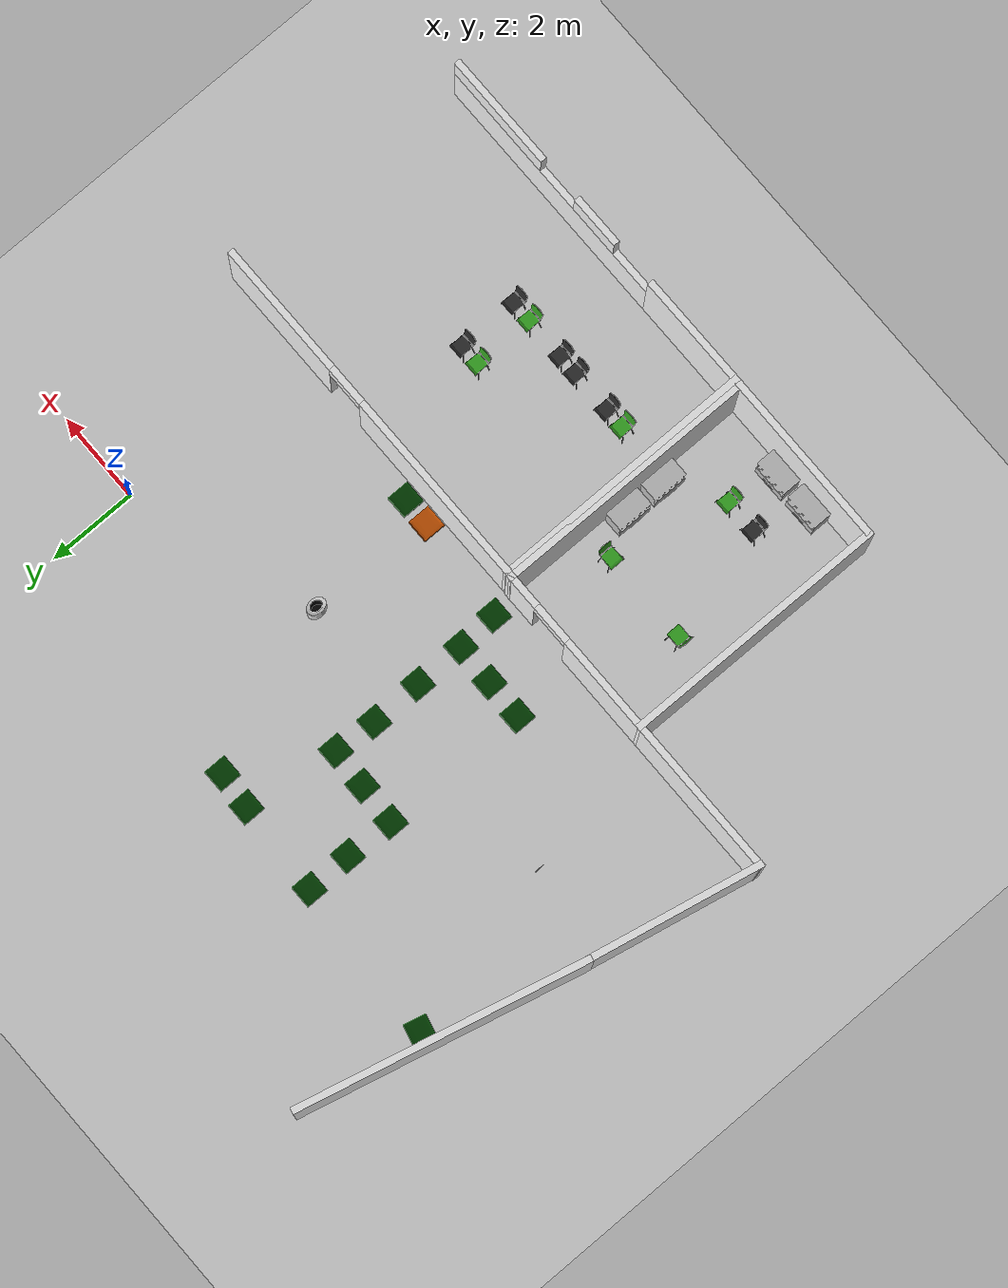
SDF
<sdf version="1.6">
 <world name="default">
  <model name="ground_plane">
   <static>1</static>
   <link name="link">
    <collision name="collision">
     <geometry><plane><normal>0 0 1</normal><size>100 100</size></plane></geometry>
     <surface><friction><ode><mu>100</mu><mu2>50</mu2></ode></friction></surface>
    </collision>
    <visual name="visual">
     <cast_shadows>0</cast_shadows>
     <geometry><plane><normal>0 0 1</normal><size>100 100</size></plane></geometry>
     <material>
      <script><uri>file://media/materials/scripts/gazebo.material</uri><name>Gazebo/Grey</name></script>
     </material>
    </visual>
   </link>
  </model>
  <model name="ucu_basic_frame.world">
   <link name="Wall_187">
    <pose>-2.91004 -8.08571 0 0 0 -3.14</pose>
    <visual name="Wall_187_Visual_0">
     <pose>-2.67697 0 1.25 0 -0 0</pose>
     <geometry><box><size>3.06354 0.15 2.5</size></box></geometry>
     <material>
      <script><uri>file://media/materials/scripts/gazebo.material</uri><name>Gazebo/White</name></script>
      <ambient>1 1 1 1</ambient>
      <diffuse>1 1 1 1</diffuse>
      <specular>0 0 0 1</specular>
      <emissive>0 0 0 1</emissive>
     </material>
     <meta><layer>0</layer></meta>
    </visual>
    <visual name="Wall_187_Visual_2">
     <pose>-0.695201 0 2.25 0 -0 0</pose>
     <geometry><box><size>0.9 0.15 0.5</size></box></geometry>
     <material>
      <script><uri>file://media/materials/scripts/gazebo.material</uri><name>Gazebo/White</name></script>
      <ambient>1 1 1 1</ambient>
      <diffuse>1 1 1 1</diffuse>
      <specular>0 0 0 1</specular>
      <emissive>0 0 0 1</emissive>
     </material>
     <meta><layer>0</layer></meta>
    </visual>
    <visual name="Wall_187_Visual_1">
     <pose>1.98177 0 1.25 0 -0 0</pose>
     <geometry><box><size>4.45394 0.15 2.5</size></box></geometry>
     <material>
      <script><uri>file://media/materials/scripts/gazebo.material</uri><name>Gazebo/White</name></script>
      <ambient>1 1 1 1</ambient>
      <diffuse>1 1 1 1</diffuse>
      <specular>0 0 0 1</specular>
      <emissive>0 0 0 1</emissive>
     </material>
     <meta><layer>0</layer></meta>
    </visual>
    <collision name="Wall_187_Collision_0">
     <pose>-2.67697 0 1.25 0 -0 0</pose>
     <geometry><box><size>3.06354 0.15 2.5</size></box></geometry>
     <surface>
      <friction>
       <ode><mu>1</mu><mu2>1</mu2><fdir1>0 0 0</fdir1><slip1>0</slip1><slip2>0</slip2></ode>
       <torsional>
        <coefficient>1</coefficient>
        <patch_radius>0</patch_radius>
        <surface_radius>0</surface_radius>
        <use_patch_radius>1</use_patch_radius>
        <ode><slip>0</slip></ode>
       </torsional>
      </friction>
      <bounce><restitution_coefficient>0</restitution_coefficient><threshold>1e+06</threshold></bounce>
      <contact>
       <collide_without_contact>0</collide_without_contact>
       <collide_without_contact_bitmask>1</collide_without_contact_bitmask>
       <collide_bitmask>1</collide_bitmask>
       <ode>
        <soft_cfm>0</soft_cfm>
        <soft_erp>0.2</soft_erp>
        <kp>1e+13</kp>
        <kd>1</kd>
        <max_vel>0.01</max_vel>
        <min_depth>0</min_depth>
       </ode>
       <bullet>
        <split_impulse>1</split_impulse>
        <split_impulse_penetration_threshold>-0.01</split_impulse_penetration_threshold>
        <soft_cfm>0</soft_cfm>
        <soft_erp>0.2</soft_erp>
        <kp>1e+13</kp>
        <kd>1</kd>
       </bullet>
      </contact>
     </surface>
    </collision>
    <collision name="Wall_187_Collision_1">
     <pose>1.98177 0 1.25 0 -0 0</pose>
     <geometry><box><size>4.45394 0.15 2.5</size></box></geometry>
     <surface>
      <friction>
       <ode><mu>1</mu><mu2>1</mu2><fdir1>0 0 0</fdir1><slip1>0</slip1><slip2>0</slip2></ode>
       <torsional>
        <coefficient>1</coefficient>
        <patch_radius>0</patch_radius>
        <surface_radius>0</surface_radius>
        <use_patch_radius>1</use_patch_radius>
        <ode><slip>0</slip></ode>
       </torsional>
      </friction>
      <bounce><restitution_coefficient>0</restitution_coefficient><threshold>1e+06</threshold></bounce>
      <contact>
       <collide_without_contact>0</collide_without_contact>
       <collide_without_contact_bitmask>1</collide_without_contact_bitmask>
       <collide_bitmask>1</collide_bitmask>
       <ode>
        <soft_cfm>0</soft_cfm>
        <soft_erp>0.2</soft_erp>
        <kp>1e+13</kp>
        <kd>1</kd>
        <max_vel>0.01</max_vel>
        <min_depth>0</min_depth>
       </ode>
       <bullet>
        <split_impulse>1</split_impulse>
        <split_impulse_penetration_threshold>-0.01</split_impulse_penetration_threshold>
        <soft_cfm>0</soft_cfm>
        <soft_erp>0.2</soft_erp>
        <kp>1e+13</kp>
        <kd>1</kd>
       </bullet>
      </contact>
     </surface>
    </collision>
    <collision name="Wall_187_Collision_2">
     <pose>-0.695201 0 2.25 0 -0 0</pose>
     <geometry><box><size>0.9 0.15 0.5</size></box></geometry>
     <surface>
      <friction>
       <ode><mu>1</mu><mu2>1</mu2><fdir1>0 0 0</fdir1><slip1>0</slip1><slip2>0</slip2></ode>
       <torsional>
        <coefficient>1</coefficient>
        <patch_radius>0</patch_radius>
        <surface_radius>0</surface_radius>
        <use_patch_radius>1</use_patch_radius>
        <ode><slip>0</slip></ode>
       </torsional>
      </friction>
      <bounce><restitution_coefficient>0</restitution_coefficient><threshold>1e+06</threshold></bounce>
      <contact>
       <collide_without_contact>0</collide_without_contact>
       <collide_without_contact_bitmask>1</collide_without_contact_bitmask>
       <collide_bitmask>1</collide_bitmask>
       <ode>
        <soft_cfm>0</soft_cfm>
        <soft_erp>0.2</soft_erp>
        <kp>1e+13</kp>
        <kd>1</kd>
        <max_vel>0.01</max_vel>
        <min_depth>0</min_depth>
       </ode>
       <bullet>
        <split_impulse>1</split_impulse>
        <split_impulse_penetration_threshold>-0.01</split_impulse_penetration_threshold>
        <soft_cfm>0</soft_cfm>
        <soft_erp>0.2</soft_erp>
        <kp>1e+13</kp>
        <kd>1</kd>
       </bullet>
      </contact>
     </surface>
    </collision>
   </link>
   <link name="Wall_188">
    <pose>-7.05036 -11.0083 0 0 0 -1.56854</pose>
    <visual name="Wall_188_Visual">
     <pose>0 0 1.25 0 -0 0</pose>
     <geometry><box><size>5.98201 0.15 2.5</size></box></geometry>
     <material>
      <script><uri>file://media/materials/scripts/gazebo.material</uri><name>Gazebo/White</name></script>
      <ambient>0 1 0 1</ambient>
      <diffuse>1 1 1 1</diffuse>
      <specular>0 0 0 1</specular>
      <emissive>0 0 0 1</emissive>
     </material>
     <meta><layer>0</layer></meta>
    </visual>
    <collision name="Wall_188_Collision">
     <pose>0 0 1.25 0 -0 0</pose>
     <geometry><box><size>5.98201 0.15 2.5</size></box></geometry>
     <surface>
      <friction>
       <ode><mu>1</mu><mu2>1</mu2><fdir1>0 0 0</fdir1><slip1>0</slip1><slip2>0</slip2></ode>
       <torsional>
        <coefficient>1</coefficient>
        <patch_radius>0</patch_radius>
        <surface_radius>0</surface_radius>
        <use_patch_radius>1</use_patch_radius>
        <ode><slip>0</slip></ode>
       </torsional>
      </friction>
      <bounce><restitution_coefficient>0</restitution_coefficient><threshold>1e+06</threshold></bounce>
      <contact>
       <collide_without_contact>0</collide_without_contact>
       <collide_without_contact_bitmask>1</collide_without_contact_bitmask>
       <collide_bitmask>1</collide_bitmask>
       <ode>
        <soft_cfm>0</soft_cfm>
        <soft_erp>0.2</soft_erp>
        <kp>1e+13</kp>
        <kd>1</kd>
        <max_vel>0.01</max_vel>
        <min_depth>0</min_depth>
       </ode>
       <bullet>
        <split_impulse>1</split_impulse>
        <split_impulse_penetration_threshold>-0.01</split_impulse_penetration_threshold>
        <soft_cfm>0</soft_cfm>
        <soft_erp>0.2</soft_erp>
        <kp>1e+13</kp>
        <kd>1</kd>
       </bullet>
      </contact>
     </surface>
    </collision>
   </link>
   <link name="Wall_189">
    <pose>-2.90346 -13.9177 0 0 -0 0.00159</pose>
    <visual name="Wall_189_Visual_0">
     <pose>-2.9043 0 1.25 0 -0 0</pose>
     <geometry><box><size>2.62204 0.15 2.5</size></box></geometry>
     <material>
      <script><uri>file://media/materials/scripts/gazebo.material</uri><name>Gazebo/White</name></script>
      <ambient>1 1 1 1</ambient>
      <diffuse>1 1 1 1</diffuse>
      <specular>0 0 0 1</specular>
      <emissive>0 0 0 1</emissive>
     </material>
     <meta><layer>0</layer></meta>
    </visual>
    <visual name="Wall_189_Visual_1">
     <pose>1.31102 0 0.85 0 -0 0</pose>
     <geometry><box><size>5.8086 0.15 1.7</size></box></geometry>
     <material>
      <script><uri>file://media/materials/scripts/gazebo.material</uri><name>Gazebo/White</name></script>
      <ambient>1 1 1 1</ambient>
      <diffuse>1 1 1 1</diffuse>
      <specular>0 0 0 1</specular>
      <emissive>0 0 0 1</emissive>
     </material>
     <meta><layer>0</layer></meta>
    </visual>
    <visual name="Wall_189_Visual_2">
     <pose>0.003473 0 2.1 0 -0 0</pose>
     <geometry><box><size>1.19351 0.15 0.8</size></box></geometry>
     <material>
      <script><uri>file://media/materials/scripts/gazebo.material</uri><name>Gazebo/White</name></script>
      <ambient>1 1 1 1</ambient>
      <diffuse>1 1 1 1</diffuse>
      <specular>0 0 0 1</specular>
      <emissive>0 0 0 1</emissive>
     </material>
     <meta><layer>0</layer></meta>
    </visual>
    <visual name="Wall_189_Visual_3">
     <pose>2.90777 0 2.1 0 -0 0</pose>
     <geometry><box><size>2.6151 0.15 0.8</size></box></geometry>
     <material>
      <script><uri>file://media/materials/scripts/gazebo.material</uri><name>Gazebo/White</name></script>
      <ambient>1 1 1 1</ambient>
      <diffuse>1 1 1 1</diffuse>
      <specular>0 0 0 1</specular>
      <emissive>0 0 0 1</emissive>
     </material>
     <meta><layer>0</layer></meta>
    </visual>
    <collision name="Wall_189_Collision_0">
     <pose>-2.9043 0 1.25 0 -0 0</pose>
     <geometry><box><size>2.62204 0.15 2.5</size></box></geometry>
     <surface>
      <friction>
       <ode><mu>1</mu><mu2>1</mu2><fdir1>0 0 0</fdir1><slip1>0</slip1><slip2>0</slip2></ode>
       <torsional>
        <coefficient>1</coefficient>
        <patch_radius>0</patch_radius>
        <surface_radius>0</surface_radius>
        <use_patch_radius>1</use_patch_radius>
        <ode><slip>0</slip></ode>
       </torsional>
      </friction>
      <bounce><restitution_coefficient>0</restitution_coefficient><threshold>1e+06</threshold></bounce>
      <contact>
       <collide_without_contact>0</collide_without_contact>
       <collide_without_contact_bitmask>1</collide_without_contact_bitmask>
       <collide_bitmask>1</collide_bitmask>
       <ode>
        <soft_cfm>0</soft_cfm>
        <soft_erp>0.2</soft_erp>
        <kp>1e+13</kp>
        <kd>1</kd>
        <max_vel>0.01</max_vel>
        <min_depth>0</min_depth>
       </ode>
       <bullet>
        <split_impulse>1</split_impulse>
        <split_impulse_penetration_threshold>-0.01</split_impulse_penetration_threshold>
        <soft_cfm>0</soft_cfm>
        <soft_erp>0.2</soft_erp>
        <kp>1e+13</kp>
        <kd>1</kd>
       </bullet>
      </contact>
     </surface>
    </collision>
    <collision name="Wall_189_Collision_1">
     <pose>1.31102 0 0.85 0 -0 0</pose>
     <geometry><box><size>5.8086 0.15 1.7</size></box></geometry>
     <surface>
      <friction>
       <ode><mu>1</mu><mu2>1</mu2><fdir1>0 0 0</fdir1><slip1>0</slip1><slip2>0</slip2></ode>
       <torsional>
        <coefficient>1</coefficient>
        <patch_radius>0</patch_radius>
        <surface_radius>0</surface_radius>
        <use_patch_radius>1</use_patch_radius>
        <ode><slip>0</slip></ode>
       </torsional>
      </friction>
      <bounce><restitution_coefficient>0</restitution_coefficient><threshold>1e+06</threshold></bounce>
      <contact>
       <collide_without_contact>0</collide_without_contact>
       <collide_without_contact_bitmask>1</collide_without_contact_bitmask>
       <collide_bitmask>1</collide_bitmask>
       <ode>
        <soft_cfm>0</soft_cfm>
        <soft_erp>0.2</soft_erp>
        <kp>1e+13</kp>
        <kd>1</kd>
        <max_vel>0.01</max_vel>
        <min_depth>0</min_depth>
       </ode>
       <bullet>
        <split_impulse>1</split_impulse>
        <split_impulse_penetration_threshold>-0.01</split_impulse_penetration_threshold>
        <soft_cfm>0</soft_cfm>
        <soft_erp>0.2</soft_erp>
        <kp>1e+13</kp>
        <kd>1</kd>
       </bullet>
      </contact>
     </surface>
    </collision>
    <collision name="Wall_189_Collision_3">
     <pose>2.90777 0 2.1 0 -0 0</pose>
     <geometry><box><size>2.6151 0.15 0.8</size></box></geometry>
     <surface>
      <friction>
       <ode><mu>1</mu><mu2>1</mu2><fdir1>0 0 0</fdir1><slip1>0</slip1><slip2>0</slip2></ode>
       <torsional>
        <coefficient>1</coefficient>
        <patch_radius>0</patch_radius>
        <surface_radius>0</surface_radius>
        <use_patch_radius>1</use_patch_radius>
        <ode><slip>0</slip></ode>
       </torsional>
      </friction>
      <bounce><restitution_coefficient>0</restitution_coefficient><threshold>1e+06</threshold></bounce>
      <contact>
       <collide_without_contact>0</collide_without_contact>
       <collide_without_contact_bitmask>1</collide_without_contact_bitmask>
       <collide_bitmask>1</collide_bitmask>
       <ode>
        <soft_cfm>0</soft_cfm>
        <soft_erp>0.2</soft_erp>
        <kp>1e+13</kp>
        <kd>1</kd>
        <max_vel>0.01</max_vel>
        <min_depth>0</min_depth>
       </ode>
       <bullet>
        <split_impulse>1</split_impulse>
        <split_impulse_penetration_threshold>-0.01</split_impulse_penetration_threshold>
        <soft_cfm>0</soft_cfm>
        <soft_erp>0.2</soft_erp>
        <kp>1e+13</kp>
        <kd>1</kd>
       </bullet>
      </contact>
     </surface>
    </collision>
    <collision name="Wall_189_Collision_2">
     <pose>0.003473 0 2.1 0 -0 0</pose>
     <geometry><box><size>1.19351 0.15 0.8</size></box></geometry>
     <surface>
      <friction>
       <ode><mu>1</mu><mu2>1</mu2><fdir1>0 0 0</fdir1><slip1>0</slip1><slip2>0</slip2></ode>
       <torsional>
        <coefficient>1</coefficient>
        <patch_radius>0</patch_radius>
        <surface_radius>0</surface_radius>
        <use_patch_radius>1</use_patch_radius>
        <ode><slip>0</slip></ode>
       </torsional>
      </friction>
      <bounce><restitution_coefficient>0</restitution_coefficient><threshold>1e+06</threshold></bounce>
      <contact>
       <collide_without_contact>0</collide_without_contact>
       <collide_without_contact_bitmask>1</collide_without_contact_bitmask>
       <collide_bitmask>1</collide_bitmask>
       <ode>
        <soft_cfm>0</soft_cfm>
        <soft_erp>0.2</soft_erp>
        <kp>1e+13</kp>
        <kd>1</kd>
        <max_vel>0.01</max_vel>
        <min_depth>0</min_depth>
       </ode>
       <bullet>
        <split_impulse>1</split_impulse>
        <split_impulse_penetration_threshold>-0.01</split_impulse_penetration_threshold>
        <soft_cfm>0</soft_cfm>
        <soft_erp>0.2</soft_erp>
        <kp>1e+13</kp>
        <kd>1</kd>
       </bullet>
      </contact>
     </surface>
    </collision>
   </link>
   <link name="Wall_200">
    <pose>-7.1096 -8.08571 0 0 -0 3.01724</pose>
    <visual name="Wall_200_Visual">
     <pose>0 0 1.25 0 -0 0</pose>
     <geometry><box><size>0.256138 0.15 2.5</size></box></geometry>
     <material>
      <script><uri>file://media/materials/scripts/gazebo.material</uri><name>Gazebo/White</name></script>
      <ambient>1 1 1 1</ambient>
      <diffuse>1 1 1 1</diffuse>
      <specular>0 0 0 1</specular>
      <emissive>0 0 0 1</emissive>
     </material>
     <meta><layer>0</layer></meta>
    </visual>
    <collision name="Wall_200_Collision">
     <pose>0 0 1.25 0 -0 0</pose>
     <geometry><box><size>0.256138 0.15 2.5</size></box></geometry>
     <surface>
      <friction>
       <ode><mu>1</mu><mu2>1</mu2><fdir1>0 0 0</fdir1><slip1>0</slip1><slip2>0</slip2></ode>
       <torsional>
        <coefficient>1</coefficient>
        <patch_radius>0</patch_radius>
        <surface_radius>0</surface_radius>
        <use_patch_radius>1</use_patch_radius>
        <ode><slip>0</slip></ode>
       </torsional>
      </friction>
      <bounce><restitution_coefficient>0</restitution_coefficient><threshold>1e+06</threshold></bounce>
      <contact>
       <collide_without_contact>0</collide_without_contact>
       <collide_without_contact_bitmask>1</collide_without_contact_bitmask>
       <collide_bitmask>1</collide_bitmask>
       <ode>
        <soft_cfm>0</soft_cfm>
        <soft_erp>0.2</soft_erp>
        <kp>1e+13</kp>
        <kd>1</kd>
        <max_vel>0.01</max_vel>
        <min_depth>0</min_depth>
       </ode>
       <bullet>
        <split_impulse>1</split_impulse>
        <split_impulse_penetration_threshold>-0.01</split_impulse_penetration_threshold>
        <soft_cfm>0</soft_cfm>
        <soft_erp>0.2</soft_erp>
        <kp>1e+13</kp>
        <kd>1</kd>
       </bullet>
      </contact>
     </surface>
    </collision>
   </link>
   <link name="Wall_201">
    <pose>-7.16884 -11.0017 0 0 0 -1.57305</pose>
    <visual name="Wall_201_Visual">
     <pose>0 0 1.25 0 -0 0</pose>
     <geometry><box><size>5.99517 0.15 2.5</size></box></geometry>
     <material>
      <script><uri>file://media/materials/scripts/gazebo.material</uri><name>Gazebo/White</name></script>
      <ambient>1 1 1 1</ambient>
      <diffuse>1 1 1 1</diffuse>
      <specular>0 0 0 1</specular>
      <emissive>0 0 0 1</emissive>
     </material>
     <meta><layer>0</layer></meta>
    </visual>
    <collision name="Wall_201_Collision">
     <pose>0 0 1.25 0 -0 0</pose>
     <geometry><box><size>5.99517 0.15 2.5</size></box></geometry>
     <surface>
      <friction>
       <ode><mu>1</mu><mu2>1</mu2><fdir1>0 0 0</fdir1><slip1>0</slip1><slip2>0</slip2></ode>
       <torsional>
        <coefficient>1</coefficient>
        <patch_radius>0</patch_radius>
        <surface_radius>0</surface_radius>
        <use_patch_radius>1</use_patch_radius>
        <ode><slip>0</slip></ode>
       </torsional>
      </friction>
      <bounce><restitution_coefficient>0</restitution_coefficient><threshold>1e+06</threshold></bounce>
      <contact>
       <collide_without_contact>0</collide_without_contact>
       <collide_without_contact_bitmask>1</collide_without_contact_bitmask>
       <collide_bitmask>1</collide_bitmask>
       <ode>
        <soft_cfm>0</soft_cfm>
        <soft_erp>0.2</soft_erp>
        <kp>1e+13</kp>
        <kd>1</kd>
        <max_vel>0.01</max_vel>
        <min_depth>0</min_depth>
       </ode>
       <bullet>
        <split_impulse>1</split_impulse>
        <split_impulse_penetration_threshold>-0.01</split_impulse_penetration_threshold>
        <soft_cfm>0</soft_cfm>
        <soft_erp>0.2</soft_erp>
        <kp>1e+13</kp>
        <kd>1</kd>
       </bullet>
      </contact>
     </surface>
    </collision>
   </link>
   <link name="Wall_202">
    <pose>-9.0909 -13.9177 0 0 -0 3.13816</pose>
    <visual name="Wall_202_Visual">
     <pose>0 0 1.25 0 -0 0</pose>
     <geometry><box><size>3.98095 0.15 2.5</size></box></geometry>
     <material>
      <script><uri>file://media/materials/scripts/gazebo.material</uri><name>Gazebo/White</name></script>
      <ambient>1 1 1 1</ambient>
      <diffuse>1 1 1 1</diffuse>
      <specular>0 0 0 1</specular>
      <emissive>0 0 0 1</emissive>
     </material>
     <meta><layer>0</layer></meta>
    </visual>
    <collision name="Wall_202_Collision">
     <pose>0 0 1.25 0 -0 0</pose>
     <geometry><box><size>3.98095 0.15 2.5</size></box></geometry>
     <surface>
      <friction>
       <ode><mu>1</mu><mu2>1</mu2><fdir1>0 0 0</fdir1><slip1>0</slip1><slip2>0</slip2></ode>
       <torsional>
        <coefficient>1</coefficient>
        <patch_radius>0</patch_radius>
        <surface_radius>0</surface_radius>
        <use_patch_radius>1</use_patch_radius>
        <ode><slip>0</slip></ode>
       </torsional>
      </friction>
      <bounce><restitution_coefficient>0</restitution_coefficient><threshold>1e+06</threshold></bounce>
      <contact>
       <collide_without_contact>0</collide_without_contact>
       <collide_without_contact_bitmask>1</collide_without_contact_bitmask>
       <collide_bitmask>1</collide_bitmask>
       <ode>
        <soft_cfm>0</soft_cfm>
        <soft_erp>0.2</soft_erp>
        <kp>1e+13</kp>
        <kd>1</kd>
        <max_vel>0.01</max_vel>
        <min_depth>0</min_depth>
       </ode>
       <bullet>
        <split_impulse>1</split_impulse>
        <split_impulse_penetration_threshold>-0.01</split_impulse_penetration_threshold>
        <soft_cfm>0</soft_cfm>
        <soft_erp>0.2</soft_erp>
        <kp>1e+13</kp>
        <kd>1</kd>
       </bullet>
      </contact>
     </surface>
    </collision>
   </link>
   <link name="Wall_203">
    <pose>-11.0064 -10.9951 0 0 -0 1.56628</pose>
    <visual name="Wall_203_Visual">
     <pose>0 0 1.25 0 -0 0</pose>
     <geometry><box><size>5.98199 0.15 2.5</size></box></geometry>
     <material>
      <script><uri>file://media/materials/scripts/gazebo.material</uri><name>Gazebo/White</name></script>
      <ambient>1 1 1 1</ambient>
      <diffuse>1 1 1 1</diffuse>
      <specular>0 0 0 1</specular>
      <emissive>0 0 0 1</emissive>
     </material>
     <meta><layer>0</layer></meta>
    </visual>
    <collision name="Wall_203_Collision">
     <pose>0 0 1.25 0 -0 0</pose>
     <geometry><box><size>5.98199 0.15 2.5</size></box></geometry>
     <surface>
      <friction>
       <ode><mu>1</mu><mu2>1</mu2><fdir1>0 0 0</fdir1><slip1>0</slip1><slip2>0</slip2></ode>
       <torsional>
        <coefficient>1</coefficient>
        <patch_radius>0</patch_radius>
        <surface_radius>0</surface_radius>
        <use_patch_radius>1</use_patch_radius>
        <ode><slip>0</slip></ode>
       </torsional>
      </friction>
      <bounce><restitution_coefficient>0</restitution_coefficient><threshold>1e+06</threshold></bounce>
      <contact>
       <collide_without_contact>0</collide_without_contact>
       <collide_without_contact_bitmask>1</collide_without_contact_bitmask>
       <collide_bitmask>1</collide_bitmask>
       <ode>
        <soft_cfm>0</soft_cfm>
        <soft_erp>0.2</soft_erp>
        <kp>1e+13</kp>
        <kd>1</kd>
        <max_vel>0.01</max_vel>
        <min_depth>0</min_depth>
       </ode>
       <bullet>
        <split_impulse>1</split_impulse>
        <split_impulse_penetration_threshold>-0.01</split_impulse_penetration_threshold>
        <soft_cfm>0</soft_cfm>
        <soft_erp>0.2</soft_erp>
        <kp>1e+13</kp>
        <kd>1</kd>
       </bullet>
      </contact>
     </surface>
    </collision>
   </link>
   <link name="Wall_204">
    <pose>-9.07773 -8.07913 0 0 -0 0</pose>
    <visual name="Wall_204_Visual_0">
     <pose>-0.86786 0 1.25 0 -0 0</pose>
     <geometry><box><size>2.24559 0.15 2.5</size></box></geometry>
     <material>
      <script><uri>file://media/materials/scripts/gazebo.material</uri><name>Gazebo/White</name></script>
      <ambient>1 1 1 1</ambient>
      <diffuse>1 1 1 1</diffuse>
      <specular>0 0 0 1</specular>
      <emissive>0 0 0 1</emissive>
     </material>
     <meta><layer>0</layer></meta>
    </visual>
    <visual name="Wall_204_Visual_1">
     <pose>1.57279 0 1.25 0 -0 0</pose>
     <geometry><box><size>0.835719 0.15 2.5</size></box></geometry>
     <material>
      <script><uri>file://media/materials/scripts/gazebo.material</uri><name>Gazebo/White</name></script>
      <ambient>1 1 1 1</ambient>
      <diffuse>1 1 1 1</diffuse>
      <specular>0 0 0 1</specular>
      <emissive>0 0 0 1</emissive>
     </material>
     <meta><layer>0</layer></meta>
    </visual>
    <visual name="Wall_204_Visual_2">
     <pose>0.704935 0 2.25 0 -0 0</pose>
     <geometry><box><size>0.9 0.15 0.5</size></box></geometry>
     <material>
      <script><uri>file://media/materials/scripts/gazebo.material</uri><name>Gazebo/White</name></script>
      <ambient>1 1 1 1</ambient>
      <diffuse>1 1 1 1</diffuse>
      <specular>0 0 0 1</specular>
      <emissive>0 0 0 1</emissive>
     </material>
     <meta><layer>0</layer></meta>
    </visual>
    <collision name="Wall_204_Collision_0">
     <pose>-0.86786 0 1.25 0 -0 0</pose>
     <geometry><box><size>2.24559 0.15 2.5</size></box></geometry>
     <surface>
      <friction>
       <ode><mu>1</mu><mu2>1</mu2><fdir1>0 0 0</fdir1><slip1>0</slip1><slip2>0</slip2></ode>
       <torsional>
        <coefficient>1</coefficient>
        <patch_radius>0</patch_radius>
        <surface_radius>0</surface_radius>
        <use_patch_radius>1</use_patch_radius>
        <ode><slip>0</slip></ode>
       </torsional>
      </friction>
      <bounce><restitution_coefficient>0</restitution_coefficient><threshold>1e+06</threshold></bounce>
      <contact>
       <collide_without_contact>0</collide_without_contact>
       <collide_without_contact_bitmask>1</collide_without_contact_bitmask>
       <collide_bitmask>1</collide_bitmask>
       <ode>
        <soft_cfm>0</soft_cfm>
        <soft_erp>0.2</soft_erp>
        <kp>1e+13</kp>
        <kd>1</kd>
        <max_vel>0.01</max_vel>
        <min_depth>0</min_depth>
       </ode>
       <bullet>
        <split_impulse>1</split_impulse>
        <split_impulse_penetration_threshold>-0.01</split_impulse_penetration_threshold>
        <soft_cfm>0</soft_cfm>
        <soft_erp>0.2</soft_erp>
        <kp>1e+13</kp>
        <kd>1</kd>
       </bullet>
      </contact>
     </surface>
    </collision>
    <collision name="Wall_204_Collision_1">
     <pose>1.57279 0 1.25 0 -0 0</pose>
     <geometry><box><size>0.835719 0.15 2.5</size></box></geometry>
     <surface>
      <friction>
       <ode><mu>1</mu><mu2>1</mu2><fdir1>0 0 0</fdir1><slip1>0</slip1><slip2>0</slip2></ode>
       <torsional>
        <coefficient>1</coefficient>
        <patch_radius>0</patch_radius>
        <surface_radius>0</surface_radius>
        <use_patch_radius>1</use_patch_radius>
        <ode><slip>0</slip></ode>
       </torsional>
      </friction>
      <bounce><restitution_coefficient>0</restitution_coefficient><threshold>1e+06</threshold></bounce>
      <contact>
       <collide_without_contact>0</collide_without_contact>
       <collide_without_contact_bitmask>1</collide_without_contact_bitmask>
       <collide_bitmask>1</collide_bitmask>
       <ode>
        <soft_cfm>0</soft_cfm>
        <soft_erp>0.2</soft_erp>
        <kp>1e+13</kp>
        <kd>1</kd>
        <max_vel>0.01</max_vel>
        <min_depth>0</min_depth>
       </ode>
       <bullet>
        <split_impulse>1</split_impulse>
        <split_impulse_penetration_threshold>-0.01</split_impulse_penetration_threshold>
        <soft_cfm>0</soft_cfm>
        <soft_erp>0.2</soft_erp>
        <kp>1e+13</kp>
        <kd>1</kd>
       </bullet>
      </contact>
     </surface>
    </collision>
    <collision name="Wall_204_Collision_2">
     <pose>0.704935 0 2.25 0 -0 0</pose>
     <geometry><box><size>0.9 0.15 0.5</size></box></geometry>
     <surface>
      <friction>
       <ode><mu>1</mu><mu2>1</mu2><fdir1>0 0 0</fdir1><slip1>0</slip1><slip2>0</slip2></ode>
       <torsional>
        <coefficient>1</coefficient>
        <patch_radius>0</patch_radius>
        <surface_radius>0</surface_radius>
        <use_patch_radius>1</use_patch_radius>
        <ode><slip>0</slip></ode>
       </torsional>
      </friction>
      <bounce><restitution_coefficient>0</restitution_coefficient><threshold>1e+06</threshold></bounce>
      <contact>
       <collide_without_contact>0</collide_without_contact>
       <collide_without_contact_bitmask>1</collide_without_contact_bitmask>
       <collide_bitmask>1</collide_bitmask>
       <ode>
        <soft_cfm>0</soft_cfm>
        <soft_erp>0.2</soft_erp>
        <kp>1e+13</kp>
        <kd>1</kd>
        <max_vel>0.01</max_vel>
        <min_depth>0</min_depth>
       </ode>
       <bullet>
        <split_impulse>1</split_impulse>
        <split_impulse_penetration_threshold>-0.01</split_impulse_penetration_threshold>
        <soft_cfm>0</soft_cfm>
        <soft_erp>0.2</soft_erp>
        <kp>1e+13</kp>
        <kd>1</kd>
       </bullet>
      </contact>
     </surface>
    </collision>
   </link>
   <link name="Wall_211">
    <pose>-12.7573 -8.07913 0 0 -0 3.14159</pose>
    <visual name="Wall_211_Visual">
     <pose>0 0 1.25 0 -0 0</pose>
     <geometry><box><size>3.67855 0.15 2.5</size></box></geometry>
     <material>
      <script><uri>file://media/materials/scripts/gazebo.material</uri><name>Gazebo/White</name></script>
      <ambient>1 1 1 1</ambient>
      <diffuse>1 1 1 1</diffuse>
      <specular>0 0 0 1</specular>
      <emissive>0 0 0 1</emissive>
     </material>
     <meta><layer>0</layer></meta>
    </visual>
    <collision name="Wall_211_Collision">
     <pose>0 0 1.25 0 -0 0</pose>
     <geometry><box><size>3.67855 0.15 2.5</size></box></geometry>
     <surface>
      <friction>
       <ode><mu>1</mu><mu2>1</mu2><fdir1>0 0 0</fdir1><slip1>0</slip1><slip2>0</slip2></ode>
       <torsional>
        <coefficient>1</coefficient>
        <patch_radius>0</patch_radius>
        <surface_radius>0</surface_radius>
        <use_patch_radius>1</use_patch_radius>
        <ode><slip>0</slip></ode>
       </torsional>
      </friction>
      <bounce><restitution_coefficient>0</restitution_coefficient><threshold>1e+06</threshold></bounce>
      <contact>
       <collide_without_contact>0</collide_without_contact>
       <collide_without_contact_bitmask>1</collide_without_contact_bitmask>
       <collide_bitmask>1</collide_bitmask>
       <ode>
        <soft_cfm>0</soft_cfm>
        <soft_erp>0.2</soft_erp>
        <kp>1e+13</kp>
        <kd>1</kd>
        <max_vel>0.01</max_vel>
        <min_depth>0</min_depth>
       </ode>
       <bullet>
        <split_impulse>1</split_impulse>
        <split_impulse_penetration_threshold>-0.01</split_impulse_penetration_threshold>
        <soft_cfm>0</soft_cfm>
        <soft_erp>0.2</soft_erp>
        <kp>1e+13</kp>
        <kd>1</kd>
       </bullet>
      </contact>
     </surface>
    </collision>
   </link>
   <link name="Wall_215">
    <pose>-14.1457 -6.25128 0 0 -0 1.36809</pose>
    <visual name="Wall_215_Visual">
     <pose>0 0 1.25 0 -0 0</pose>
     <geometry><box><size>3.88211 0.15 2.5</size></box></geometry>
     <material>
      <script><uri>file://media/materials/scripts/gazebo.material</uri><name>Gazebo/White</name></script>
      <ambient>1 1 1 1</ambient>
      <diffuse>1 1 1 1</diffuse>
      <specular>0 0 0 1</specular>
      <emissive>0 0 0 1</emissive>
     </material>
     <meta><layer>0</layer></meta>
    </visual>
    <collision name="Wall_215_Collision">
     <pose>0 0 1.25 0 -0 0</pose>
     <geometry><box><size>3.88211 0.15 2.5</size></box></geometry>
     <surface>
      <friction>
       <ode><mu>1</mu><mu2>1</mu2><fdir1>0 0 0</fdir1><slip1>0</slip1><slip2>0</slip2></ode>
       <torsional>
        <coefficient>1</coefficient>
        <patch_radius>0</patch_radius>
        <surface_radius>0</surface_radius>
        <use_patch_radius>1</use_patch_radius>
        <ode><slip>0</slip></ode>
       </torsional>
      </friction>
      <bounce><restitution_coefficient>0</restitution_coefficient><threshold>1e+06</threshold></bounce>
      <contact>
       <collide_without_contact>0</collide_without_contact>
       <collide_without_contact_bitmask>1</collide_without_contact_bitmask>
       <collide_bitmask>1</collide_bitmask>
       <ode>
        <soft_cfm>0</soft_cfm>
        <soft_erp>0.2</soft_erp>
        <kp>1e+13</kp>
        <kd>1</kd>
        <max_vel>0.01</max_vel>
        <min_depth>0</min_depth>
       </ode>
       <bullet>
        <split_impulse>1</split_impulse>
        <split_impulse_penetration_threshold>-0.01</split_impulse_penetration_threshold>
        <soft_cfm>0</soft_cfm>
        <soft_erp>0.2</soft_erp>
        <kp>1e+13</kp>
        <kd>1</kd>
       </bullet>
      </contact>
     </surface>
    </collision>
   </link>
   <link name="Wall_216">
    <pose>-13.0355 -1.31077 0 0 -0 1.3362</pose>
    <visual name="Wall_216_Visual">
     <pose>0 0 1.25 0 -0 0</pose>
     <geometry><box><size>6.46944 0.15 2.5</size></box></geometry>
     <material>
      <script><uri>file://media/materials/scripts/gazebo.material</uri><name>Gazebo/White</name></script>
      <ambient>1 1 1 1</ambient>
      <diffuse>1 1 1 1</diffuse>
      <specular>0 0 0 1</specular>
      <emissive>0 0 0 1</emissive>
     </material>
     <meta><layer>0</layer></meta>
    </visual>
    <collision name="Wall_216_Collision">
     <pose>0 0 1.25 0 -0 0</pose>
     <geometry><box><size>6.46944 0.15 2.5</size></box></geometry>
     <surface>
      <friction>
       <ode><mu>1</mu><mu2>1</mu2><fdir1>0 0 0</fdir1><slip1>0</slip1><slip2>0</slip2></ode>
       <torsional>
        <coefficient>1</coefficient>
        <patch_radius>0</patch_radius>
        <surface_radius>0</surface_radius>
        <use_patch_radius>1</use_patch_radius>
        <ode><slip>0</slip></ode>
       </torsional>
      </friction>
      <bounce><restitution_coefficient>0</restitution_coefficient><threshold>1e+06</threshold></bounce>
      <contact>
       <collide_without_contact>0</collide_without_contact>
       <collide_without_contact_bitmask>1</collide_without_contact_bitmask>
       <collide_bitmask>1</collide_bitmask>
       <ode>
        <soft_cfm>0</soft_cfm>
        <soft_erp>0.2</soft_erp>
        <kp>1e+13</kp>
        <kd>1</kd>
        <max_vel>0.01</max_vel>
        <min_depth>0</min_depth>
       </ode>
       <bullet>
        <split_impulse>1</split_impulse>
        <split_impulse_penetration_threshold>-0.01</split_impulse_penetration_threshold>
        <soft_cfm>0</soft_cfm>
        <soft_erp>0.2</soft_erp>
        <kp>1e+13</kp>
        <kd>1</kd>
       </bullet>
      </contact>
     </surface>
    </collision>
   </link>
   <static>1</static>
   <pose>0.7577 3.6363 0 0 -0 0</pose>
  </model>
  <include>
   <uri>model://robert_gazebo/models/locker_008</uri>
   <name>locker_009_1</name>
   <pose>-6.71 -7.24 0.45 0 0 -1.57</pose>
  </include>
  <include>
   <uri>model://robert_gazebo/models/locker_008</uri>
   <name>locker_009_2</name>
   <pose>-6.71 -8.15 0.45 0 0 -1.57</pose>
  </include>
  <include>
   <uri>model://robert_gazebo/models/locker_008</uri>
   <name>locker_009_3</name>
   <pose>-8.98 -10 0.45 0 0 -3.14</pose>
  </include>
  <include>
   <uri>model://robert_gazebo/models/locker_008</uri>
   <name>locker_009_4</name>
   <pose>-8.08 -9.985 0.45 0 0 -3.14</pose>
  </include>
  <include>
   <uri>model://robert_gazebo/models/dump</uri>
   <name>dump_2</name>
   <pose>-4.16 -1.32 0.28 0 0 -1.57</pose>
  </include>
  <include>
   <uri>model://robert_gazebo/models/puffy/green</uri>
   <name>puffy_green_2</name>
   <pose>-3.65 -4.07 0.2 0 0 0</pose>
  </include>
  <include>
   <uri>model://robert_gazebo/models/puffy/orange</uri>
   <name>puffy_orange_2</name>
   <pose>-4.29 -4.07 0.2 0 0 0</pose>
  </include>
  <include>
   <uri>model://robert_gazebo/models/classroom_chair_grey</uri>
   <name>classroom_chair_008_1_2_1</name>
   <pose>-2.03 -6.94 0.445 0 0 3.14</pose>
  </include>
  <include>
   <uri>model://robert_gazebo/models/classroom_chair_green</uri>
   <name>classroom_chair_008_1_2_2</name>
   <pose>-2.5 -6.94 0.445 0 0 3.14</pose>
  </include>
  <include>
   <uri>model://robert_gazebo/models/classroom_chair_grey</uri>
   <name>classroom_chair_008_2_3_1</name>
   <pose>-2.03 -8.29 0.445 0 0 3.14</pose>
  </include>
  <include>
   <uri>model://robert_gazebo/models/classroom_chair_green</uri>
   <name>classroom_chair_008_2_3_2</name>
   <pose>-2.5 -8.29 0.445 0 0 3.14</pose>
  </include>
  <include>
   <uri>model://robert_gazebo/models/classroom_chair_grey</uri>
   <name>classroom_chair_008_2_4_1</name>
   <pose>-3.45 -8.29 0.445 0 0 3.14</pose>
  </include>
  <include>
   <uri>model://robert_gazebo/models/classroom_chair_grey</uri>
   <name>classroom_chair_008_2_4_2</name>
   <pose>-3.91 -8.29 0.445 0 0 3.14</pose>
  </include>
  <include>
   <uri>model://robert_gazebo/models/classroom_chair_grey</uri>
   <name>classroom_chair_008_2_5_1</name>
   <pose>-4.87 -8.29 0.445 0 0 3.14</pose>
  </include>
  <include>
   <uri>model://robert_gazebo/models/classroom_chair_green</uri>
   <name>classroom_chair_008_2_5_2</name>
   <pose>-5.33 -8.29 0.445 0 0 3.14</pose>
  </include>
  <include>
   <uri>model://robert_gazebo/models/classroom_chair_green</uri>
   <name>classroom_chair_009_1</name>
   <pose>-9.26 -6.4 0.445 0 0 1.57</pose>
  </include>
  <include>
   <uri>model://robert_gazebo/models/classroom_chair_grey</uri>
   <name>classroom_chair_009_2</name>
   <pose>-8.6 -8.92 0.445 0 0 3.14</pose>
  </include>
  <include>
   <uri>model://robert_gazebo/models/classroom_chair_green</uri>
   <name>classroom_chair_009_3</name>
   <pose>-7.17 -6.41 0.445 0 0 -1.57</pose>
  </include>
  <include>
   <uri>model://robert_gazebo/models/classroom_chair_green</uri>
   <name>classroom_chair_009_4</name>
   <pose>-7.85 -8.92 0.445 0 0 3.14</pose>
  </include>
  <include>
   <uri>model://robert_gazebo/models/soft_armchair/green</uri>
   <name>soft_armchair_green_7</name>
   <pose>-11.86 2.54 0.38 0 0 -1.82</pose>
  </include>
  <include>
   <uri>model://robert_gazebo/models/soft_armchair/green</uri>
   <name>test_green_1</name>
   <pose>-6.56603 -3.87729 0.379515 1e-06 -0 0</pose>
  </include>
  <include>
   <uri>model://robert_gazebo/models/soft_armchair/green</uri>
   <name>test_green_2</name>
   <pose>-6.622 -2.97361 0.379515 1e-06 -0 0</pose>
  </include>
  <include>
   <uri>model://robert_gazebo/models/soft_armchair/green</uri>
   <name>test_green_3</name>
   <pose>-7.5191 -2.94807 0.379515 1e-06 -0 0</pose>
  </include>
  <include>
   <uri>model://robert_gazebo/models/soft_armchair/green</uri>
   <name>test_green_4</name>
   <pose>-7.45958 0.284014 0.379515 1e-06 -0 0</pose>
  </include>
  <include>
   <uri>model://robert_gazebo/models/soft_armchair/green</uri>
   <name>test_green_5</name>
   <pose>-8.36548 0.325113 0.379515 1e-06 -0 0</pose>
  </include>
  <include>
   <uri>model://robert_gazebo/models/soft_armchair/green</uri>
   <name>test_green_6</name>
   <pose>-8.33122 1.39626 0.379515 1e-06 -0 0</pose>
  </include>
  <include>
   <uri>model://robert_gazebo/models/soft_armchair/green</uri>
   <name>test_green_7</name>
   <pose>-8.34254 2.39043 0.379515 1e-06 -0 0</pose>
  </include>
  <include>
   <uri>model://robert_gazebo/models/soft_armchair/green</uri>
   <name>test_green_8</name>
   <pose>-8.38205 -2.9349 0.379515 1e-06 -0 0</pose>
  </include>
  <include>
   <uri>model://robert_gazebo/models/soft_armchair/green</uri>
   <name>test_green_11</name>
   <pose>-5.49418 2.22183 0.379515 1e-06 -0 0</pose>
  </include>
  <include>
   <uri>model://robert_gazebo/models/soft_armchair/green</uri>
   <name>test_green_12</name>
   <pose>-6.63288 -1.84973 0.379515 1e-06 -0 0</pose>
  </include>
  <include>
   <uri>model://robert_gazebo/models/soft_armchair/green</uri>
   <name>test_green_13</name>
   <pose>-6.64784 -0.710534 0.379515 1e-06 -0 0</pose>
  </include>
  <include>
   <uri>model://robert_gazebo/models/soft_armchair/green</uri>
   <name>test_green_14</name>
   <pose>-6.59561 0.233997 0.379515 1e-06 -0 0</pose>
  </include>
  <include>
   <uri>model://robert_gazebo/models/soft_armchair/green</uri>
   <name>test_green_15</name>
   <pose>-6.30358 2.29232 0.379515 1e-06 -0 0</pose>
  </include>
  <include>
   <uri>model://robert_gazebo/models/qr/008</uri>
   <name>qr_008</name>
   <pose>-6.21 -6.6 1.6 0 0 1.57</pose>
  </include>
  <include>
   <uri>model://robert_gazebo/models/qr/it-space_2</uri>
   <name>qr_it-space_2</name>
   <pose>-11.02 -1.22 1.6 0 0 1.57</pose>
  </include>
 </world>
</sdf>
